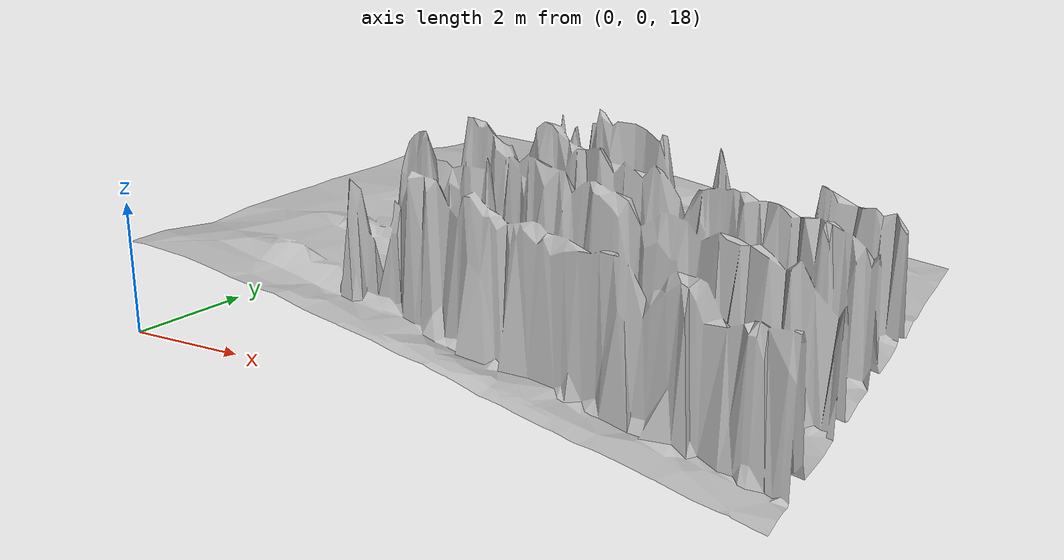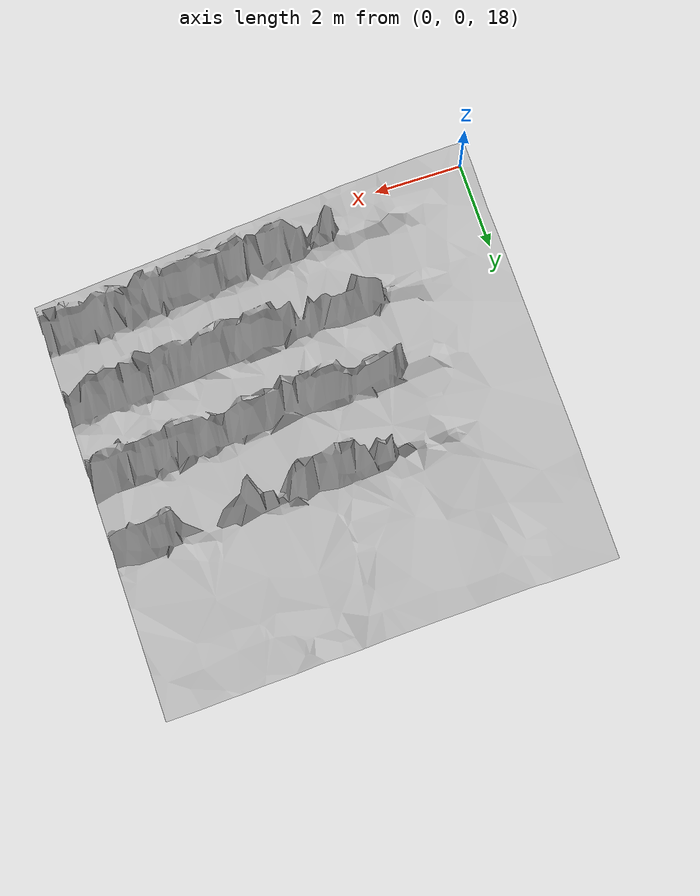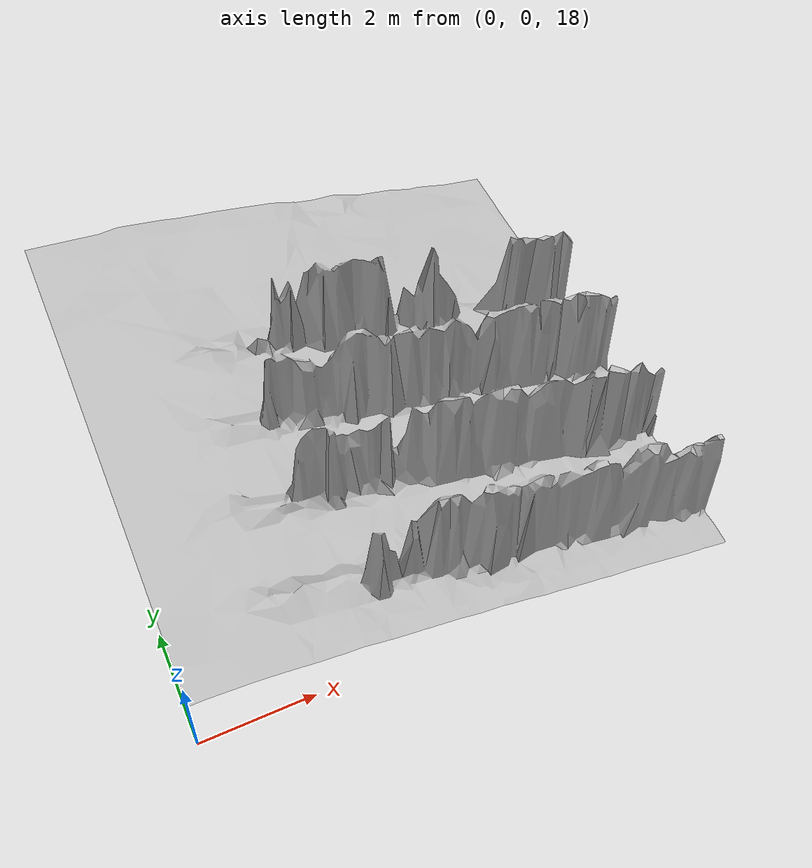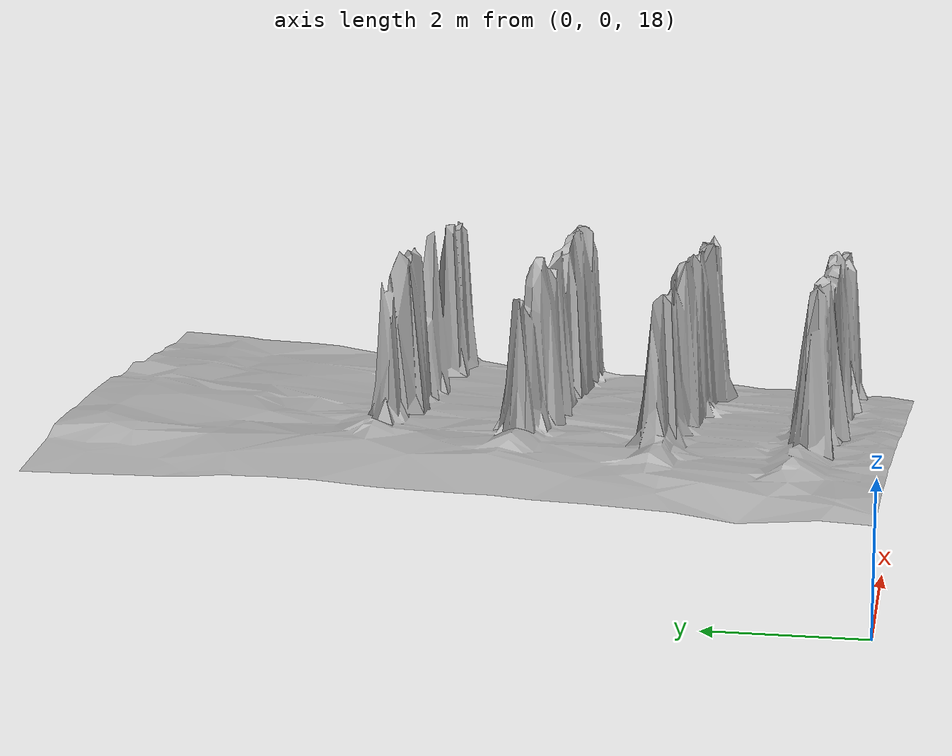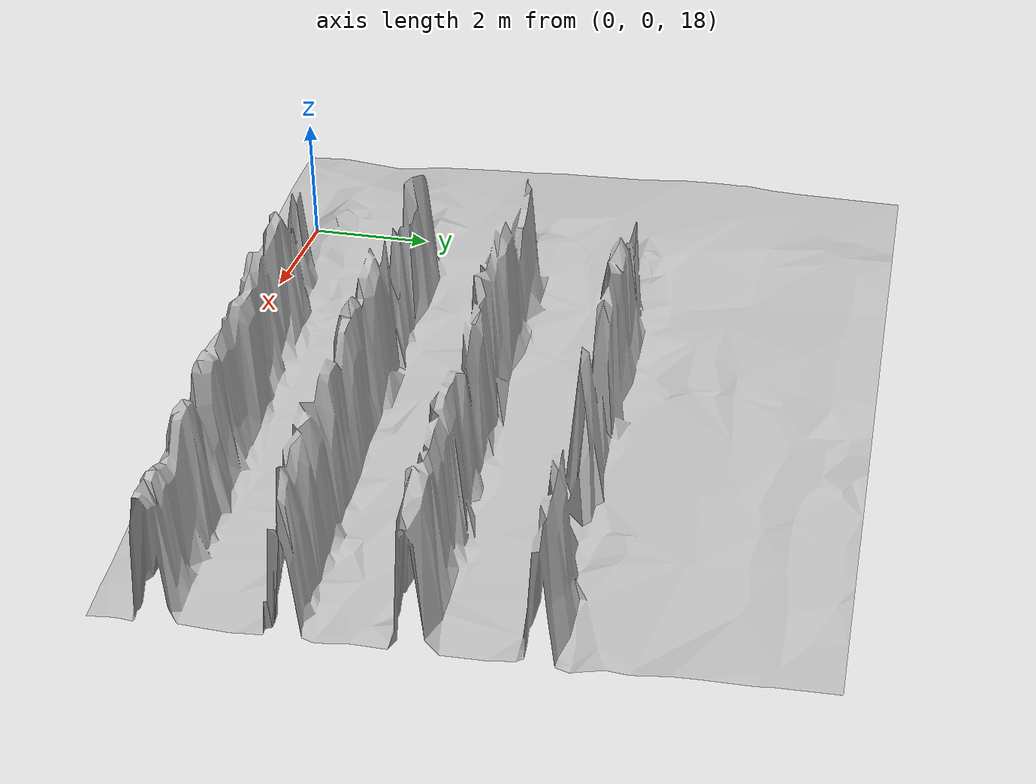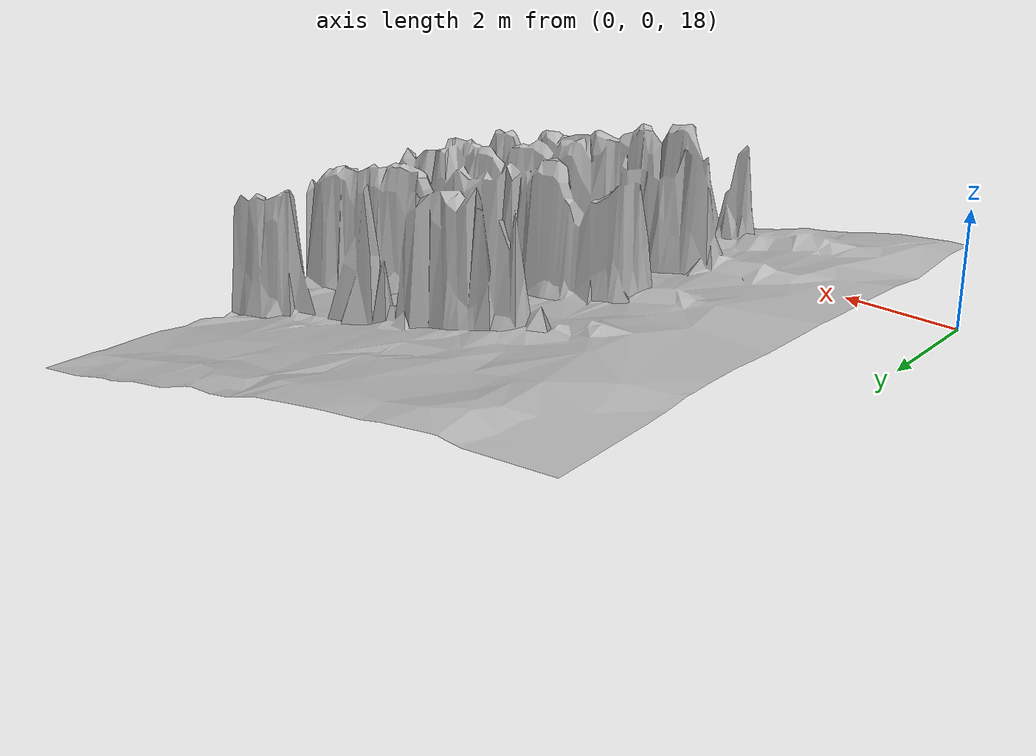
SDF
<?xml version="1.0" ?>
<sdf version="1.10">
    <model name="map_260_20">
        <link name="map_260_20_link">
            <visual name="map_260_20_visual">
                <geometry>
                    <mesh>
                        <uri>meshes/visual/map_260_20.obj</uri>
                    </mesh>
                </geometry>
            </visual>
            <collision name="map_260_20_collision">
                <surface>
                    <friction>
                        <ode>
                            <mu>2.316343837943928</mu>
                            <mu2>2.316343837943928</mu2>
                        </ode>
                        <bullet>
                            <friction>2.316343837943928</friction>
                            <friction2>2.316343837943928</friction2>
                        </bullet>
                    </friction>
                </surface>
                <geometry>
                    <mesh>
                        <uri>meshes/visual/map_260_20.obj</uri>
                    </mesh>
                </geometry>
            </collision>
        </link>
        <static>True</static>
    </model>
</sdf>
